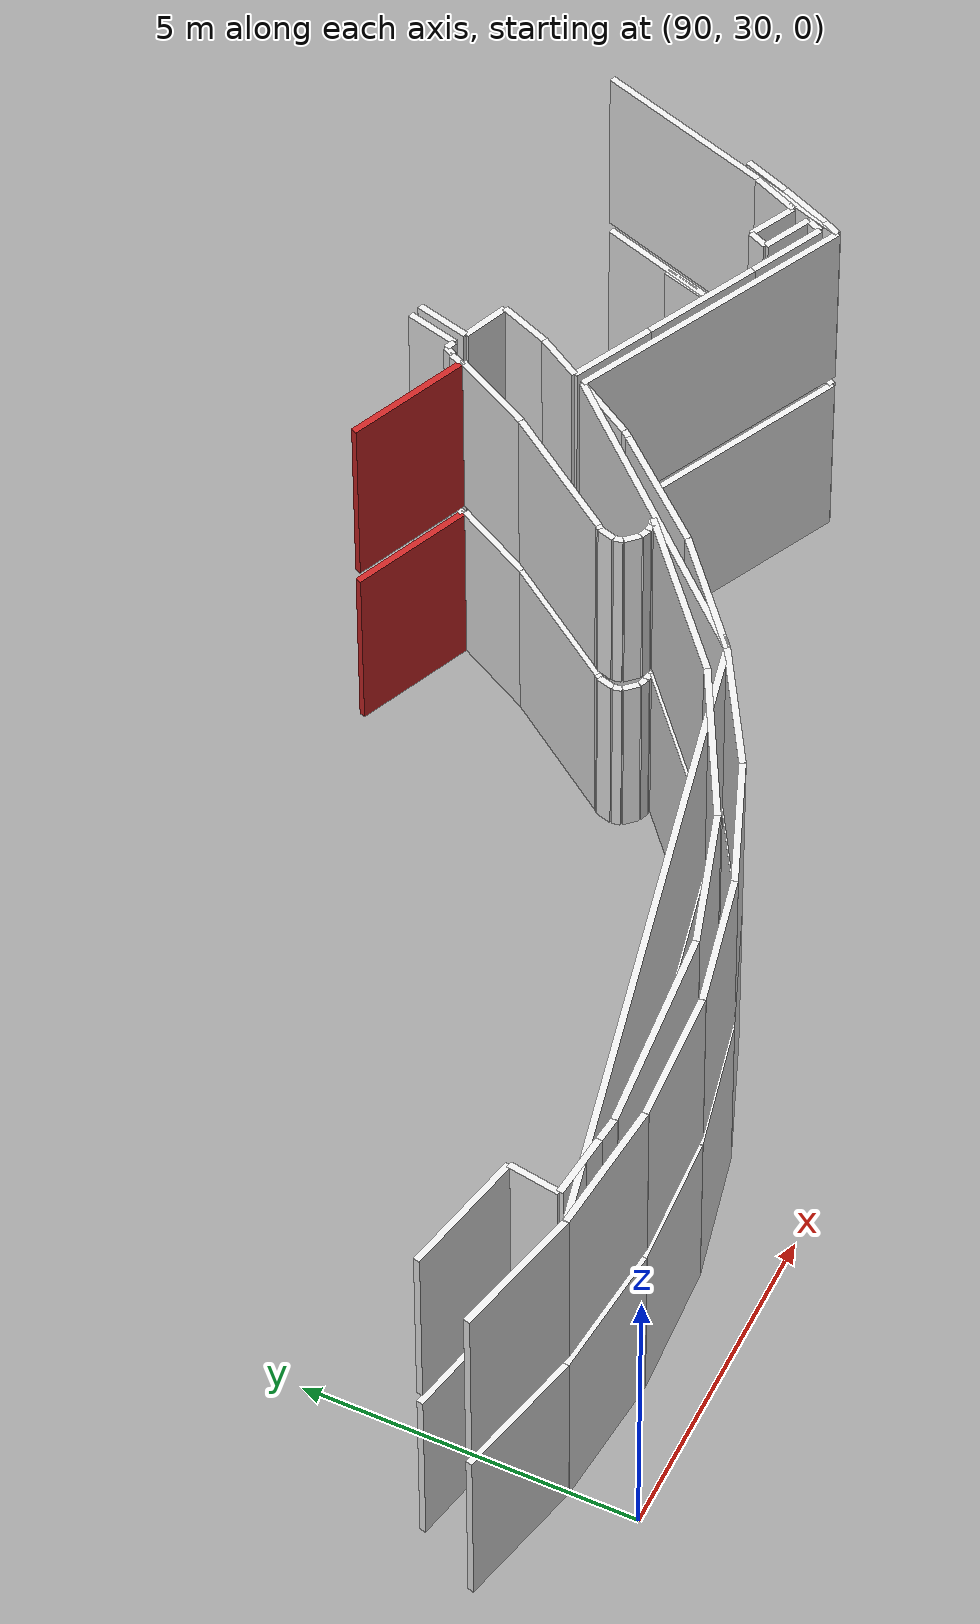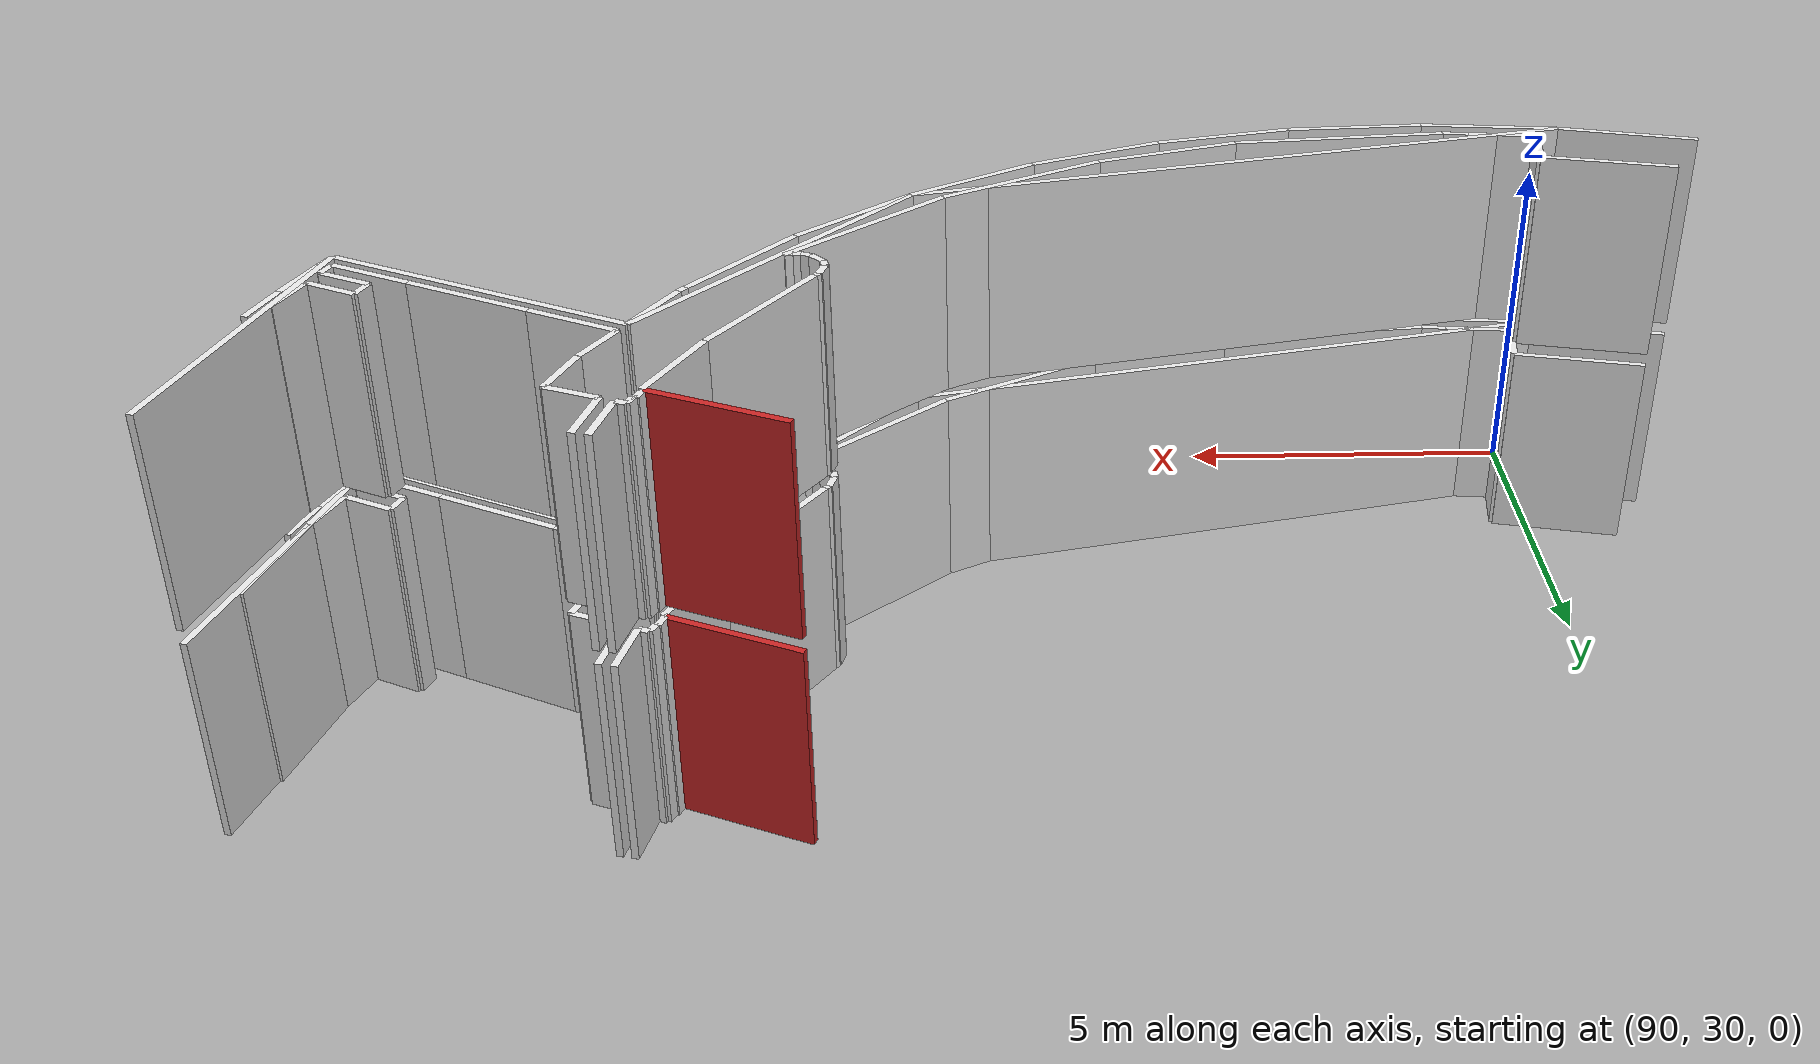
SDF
<sdf version="1.6">
 <world name="default">
  <model name="wall_101.7_39.1_0.0">
   <static>true</static>
   <pose>101.71000000002095 39.06499999994412 1.5 0 0 -0.4219085234522241</pose>
   <link name="link">
    <visual name="visual">
     <geometry><box><size>1.9291708063548034 0.1 3</size></box></geometry>
     <material>
      <script><uri>file://media/materials/scripts/gazebo.material</uri><name>Gazebo/Red</name></script>
     </material>
    </visual>
   </link>
  </model>
  <model name="wall_103.0_39.3_0.0">
   <static>true</static>
   <pose>103.0 39.31000000005588 1.5 0 0 -1.821799013301479</pose>
   <link name="link">
    <visual name="visual">
     <geometry><box><size>0.8052328858089288 0.1 3</size></box></geometry>
     <material>
      <script><uri>file://media/materials/scripts/gazebo.material</uri><name>Gazebo/White</name></script>
     </material>
    </visual>
   </link>
  </model>
  <model name="wall_102.8_38.9_0.0">
   <static>true</static>
   <pose>102.8300000000163 38.949999999953434 1.5 0 0 2.736700867003636</pose>
   <link name="link">
    <visual name="visual">
     <geometry><box><size>0.15231546215213043 0.1 3</size></box></geometry>
     <material>
      <script><uri>file://media/materials/scripts/gazebo.material</uri><name>Gazebo/White</name></script>
     </material>
    </visual>
   </link>
  </model>
  <model name="wall_102.7_38.9_0.0">
   <static>true</static>
   <pose>102.72500000000582 38.90999999991618 1.5 0 0 -2.0344439354630874</pose>
   <link name="link">
    <visual name="visual">
     <geometry><box><size>0.15652475854472905 0.1 3</size></box></geometry>
     <material>
      <script><uri>file://media/materials/scripts/gazebo.material</uri><name>Gazebo/White</name></script>
     </material>
    </visual>
   </link>
  </model>
  <model name="wall_102.7_38.8_0.0">
   <static>true</static>
   <pose>102.67999999999302 38.84499999997206 1.5 0 0 2.677945035275761</pose>
   <link name="link">
    <visual name="visual">
     <geometry><box><size>0.022360679899947934 0.1 3</size></box></geometry>
     <material>
      <script><uri>file://media/materials/scripts/gazebo.material</uri><name>Gazebo/White</name></script>
     </material>
    </visual>
   </link>
  </model>
  <model name="wall_102.6_38.8_0.0">
   <static>true</static>
   <pose>102.63000000000466 38.76000000000931 1.5 0 0 -1.9890206558340546</pose>
   <link name="link">
    <visual name="visual">
     <geometry><box><size>0.19697715617209063 0.1 3</size></box></geometry>
     <material>
      <script><uri>file://media/materials/scripts/gazebo.material</uri><name>Gazebo/White</name></script>
     </material>
    </visual>
   </link>
  </model>
  <model name="wall_102.6_38.7_0.0">
   <static>true</static>
   <pose>102.60500000001048 38.65999999991618 1.5 0 0 -0.5880026044430701</pose>
   <link name="link">
    <visual name="visual">
     <geometry><box><size>0.03605551273978751 0.1 3</size></box></geometry>
     <material>
      <script><uri>file://media/materials/scripts/gazebo.material</uri><name>Gazebo/White</name></script>
     </material>
    </visual>
   </link>
  </model>
  <model name="wall_102.3_38.1_0.0">
   <static>true</static>
   <pose>102.30499999999302 38.05499999993481 1.5 0 0 -2.0576955586286396</pose>
   <link name="link">
    <visual name="visual">
     <geometry><box><size>1.3464768842697874 0.1 3</size></box></geometry>
     <material>
      <script><uri>file://media/materials/scripts/gazebo.material</uri><name>Gazebo/White</name></script>
     </material>
    </visual>
   </link>
  </model>
  <model name="wall_101.4_36.6_0.0">
   <static>true</static>
   <pose>101.36499999999069 36.574999999953434 1.5 0 0 -2.1856810573733596</pose>
   <link name="link">
    <visual name="visual">
     <geometry><box><size>2.166887168282174 0.1 3</size></box></geometry>
     <material>
      <script><uri>file://media/materials/scripts/gazebo.material</uri><name>Gazebo/White</name></script>
     </material>
    </visual>
   </link>
  </model>
  <model name="wall_100.7_35.7_0.0">
   <static>true</static>
   <pose>100.71499999999651 35.66500000003725 1.5 0 0 -2.3561944919385747</pose>
   <link name="link">
    <visual name="visual">
     <geometry><box><size>0.07071067797871404 0.1 3</size></box></geometry>
     <material>
      <script><uri>file://media/materials/scripts/gazebo.material</uri><name>Gazebo/White</name></script>
     </material>
    </visual>
   </link>
  </model>
  <model name="wall_100.7_35.5_0.0">
   <static>true</static>
   <pose>100.65499999999884 35.52000000001863 1.5 0 0 -1.854590435779707</pose>
   <link name="link">
    <visual name="visual">
     <geometry><box><size>0.25000000021653246 0.1 3</size></box></geometry>
     <material>
      <script><uri>file://media/materials/scripts/gazebo.material</uri><name>Gazebo/White</name></script>
     </material>
    </visual>
   </link>
  </model>
  <model name="wall_100.6_35.3_0.0">
   <static>true</static>
   <pose>100.63500000000931 35.33499999996275 1.5 0 0 -1.3439974783485995</pose>
   <link name="link">
    <visual name="visual">
     <geometry><box><size>0.13341664053864913 0.1 3</size></box></geometry>
     <material>
      <script><uri>file://media/materials/scripts/gazebo.material</uri><name>Gazebo/White</name></script>
     </material>
    </visual>
   </link>
  </model>
  <model name="wall_100.7_35.2_0.0">
   <static>true</static>
   <pose>100.73500000001513 35.17999999993481 1.5 0 0 -0.8139618217489675</pose>
   <link name="link">
    <visual name="visual">
     <geometry><box><size>0.24758836817348331 0.1 3</size></box></geometry>
     <material>
      <script><uri>file://media/materials/scripts/gazebo.material</uri><name>Gazebo/White</name></script>
     </material>
    </visual>
   </link>
  </model>
  <model name="wall_100.9_35.1_0.0">
   <static>true</static>
   <pose>100.88500000000931 35.06499999994412 1.5 0 0 -0.36717383255805336</pose>
   <link name="link">
    <visual name="visual">
     <geometry><box><size>0.13928388270932235 0.1 3</size></box></geometry>
     <material>
      <script><uri>file://media/materials/scripts/gazebo.material</uri><name>Gazebo/White</name></script>
     </material>
    </visual>
   </link>
  </model>
  <model name="wall_101.0_35.0_0.0">
   <static>true</static>
   <pose>101.00500000000466 35.04000000003725 1.5 0 0 0.0</pose>
   <link name="link">
    <visual name="visual">
     <geometry><box><size>0.10999999998603016 0.1 3</size></box></geometry>
     <material>
      <script><uri>file://media/materials/scripts/gazebo.material</uri><name>Gazebo/White</name></script>
     </material>
    </visual>
   </link>
  </model>
  <model name="wall_101.1_35.1_0.0">
   <static>true</static>
   <pose>101.11499999999069 35.05499999993481 1.5 0 0 0.2662520474494707</pose>
   <link name="link">
    <visual name="visual">
     <geometry><box><size>0.11401754244252582 0.1 3</size></box></geometry>
     <material>
      <script><uri>file://media/materials/scripts/gazebo.material</uri><name>Gazebo/White</name></script>
     </material>
    </visual>
   </link>
  </model>
  <model name="wall_100.1_34.2_0.0">
   <static>true</static>
   <pose>100.125 34.17999999993481 1.5 0 0 -2.4361271769906225</pose>
   <link name="link">
    <visual name="visual">
     <geometry><box><size>2.7452686570050546 0.1 3</size></box></geometry>
     <material>
      <script><uri>file://media/materials/scripts/gazebo.material</uri><name>Gazebo/White</name></script>
     </material>
    </visual>
   </link>
  </model>
  <model name="wall_98.0_32.7_0.0">
   <static>true</static>
   <pose>97.96499999999651 32.699999999953434 1.5 0 0 -2.654899479832602</pose>
   <link name="link">
    <visual name="visual">
     <geometry><box><size>2.522954617224051 0.1 3</size></box></geometry>
     <material>
      <script><uri>file://media/materials/scripts/gazebo.material</uri><name>Gazebo/White</name></script>
     </material>
    </visual>
   </link>
  </model>
  <model name="wall_95.8_31.8_0.0">
   <static>true</static>
   <pose>95.83499999999185 31.794999999925494 1.5 0 0 -2.8406724192753643</pose>
   <link name="link">
    <visual name="visual">
     <geometry><box><size>2.125511703034424 0.1 3</size></box></geometry>
     <material>
      <script><uri>file://media/materials/scripts/gazebo.material</uri><name>Gazebo/White</name></script>
     </material>
    </visual>
   </link>
  </model>
  <model name="wall_93.3_31.3_0.0">
   <static>true</static>
   <pose>93.27499999999418 31.34499999997206 1.5 0 0 -3.0544353790302465</pose>
   <link name="link">
    <visual name="visual">
     <geometry><box><size>3.101773686162215 0.1 3</size></box></geometry>
     <material>
      <script><uri>file://media/materials/scripts/gazebo.material</uri><name>Gazebo/White</name></script>
     </material>
    </visual>
   </link>
  </model>
  <model name="wall_91.5_31.2_0.0">
   <static>true</static>
   <pose>91.5449999999837 31.229999999981374 1.5 0 0 3.0339027826561074</pose>
   <link name="link">
    <visual name="visual">
     <geometry><box><size>0.3721558813179423 0.1 3</size></box></geometry>
     <material>
      <script><uri>file://media/materials/scripts/gazebo.material</uri><name>Gazebo/White</name></script>
     </material>
    </visual>
   </link>
  </model>
  <model name="wall_90.9_31.3_0.0">
   <static>true</static>
   <pose>90.86999999999534 31.300000000046566 1.5 0 0 3.039903801730743</pose>
   <link name="link">
    <visual name="visual">
     <geometry><box><size>0.985088828472904 0.1 3</size></box></geometry>
     <material>
      <script><uri>file://media/materials/scripts/gazebo.material</uri><name>Gazebo/White</name></script>
     </material>
    </visual>
   </link>
  </model>
  <model name="wall_90.4_31.7_0.0">
   <static>true</static>
   <pose>90.44000000000233 31.739999999990687 1.5 0 0 1.4181469983659853</pose>
   <link name="link">
    <visual name="visual">
     <geometry><box><size>0.7891767860747378 0.1 3</size></box></geometry>
     <material>
      <script><uri>file://media/materials/scripts/gazebo.material</uri><name>Gazebo/White</name></script>
     </material>
    </visual>
   </link>
  </model>
  <model name="wall_89.6_32.3_0.0">
   <static>true</static>
   <pose>89.56500000000233 32.33499999996275 1.5 0 0 2.9257565612511374</pose>
   <link name="link">
    <visual name="visual">
     <geometry><box><size>1.914418971935029 0.1 3</size></box></geometry>
     <material>
      <script><uri>file://media/materials/scripts/gazebo.material</uri><name>Gazebo/White</name></script>
     </material>
    </visual>
   </link>
  </model>
  <model name="wall_107.7_37.2_0.0">
   <static>true</static>
   <pose>107.74499999999534 37.204999999841675 1.5 0 0 -1.8662371639558804</pose>
   <link name="link">
    <visual name="visual">
     <geometry><box><size>1.6829141390965354 0.1 3</size></box></geometry>
     <material>
      <script><uri>file://media/materials/scripts/gazebo.material</uri><name>Gazebo/White</name></script>
     </material>
    </visual>
   </link>
  </model>
  <model name="wall_107.4_36.1_0.0">
   <static>true</static>
   <pose>107.35000000000582 36.05499999993481 1.5 0 0 -1.980923667351811</pose>
   <link name="link">
    <visual name="visual">
     <geometry><box><size>0.7523961721831801 0.1 3</size></box></geometry>
     <material>
      <script><uri>file://media/materials/scripts/gazebo.material</uri><name>Gazebo/White</name></script>
     </material>
    </visual>
   </link>
  </model>
  <model name="wall_106.9_35.9_0.0">
   <static>true</static>
   <pose>106.86000000001513 35.87999999988824 1.5 0 0 2.677945044760186</pose>
   <link name="link">
    <visual name="visual">
     <geometry><box><size>0.760263112277041 0.1 3</size></box></geometry>
     <material>
      <script><uri>file://media/materials/scripts/gazebo.material</uri><name>Gazebo/White</name></script>
     </material>
    </visual>
   </link>
  </model>
  <model name="wall_106.5_35.9_0.0">
   <static>true</static>
   <pose>106.46000000002095 35.90999999991618 1.5 0 0 -1.9756881133308752</pose>
   <link name="link">
    <visual name="visual">
     <geometry><box><size>0.3046309240443975 0.1 3</size></box></geometry>
     <material>
      <script><uri>file://media/materials/scripts/gazebo.material</uri><name>Gazebo/White</name></script>
     </material>
    </visual>
   </link>
  </model>
  <model name="wall_106.7_35.6_0.0">
   <static>true</static>
   <pose>106.74500000002445 35.60000000009313 1.5 0 0 -0.4578337208438593</pose>
   <link name="link">
    <visual name="visual">
     <geometry><box><size>0.769220384481512 0.1 3</size></box></geometry>
     <material>
      <script><uri>file://media/materials/scripts/gazebo.material</uri><name>Gazebo/White</name></script>
     </material>
    </visual>
   </link>
  </model>
  <model name="wall_107.0_35.3_0.0">
   <static>true</static>
   <pose>107.04000000000815 35.31500000017695 1.5 0 0 -1.9809236674937056</pose>
   <link name="link">
    <visual name="visual">
     <geometry><box><size>0.25079872407653264 0.1 3</size></box></geometry>
     <material>
      <script><uri>file://media/materials/scripts/gazebo.material</uri><name>Gazebo/White</name></script>
     </material>
    </visual>
   </link>
  </model>
  <model name="wall_106.4_35.5_0.0">
   <static>true</static>
   <pose>106.44999999998254 35.47000000020489 1.5 0 0 2.6779450445674287</pose>
   <link name="link">
    <visual name="visual">
     <geometry><box><size>1.207476707881124 0.1 3</size></box></geometry>
     <material>
      <script><uri>file://media/materials/scripts/gazebo.material</uri><name>Gazebo/White</name></script>
     </material>
    </visual>
   </link>
  </model>
  <model name="wall_105.1_36.2_0.0">
   <static>true</static>
   <pose>105.08499999999185 36.15500000002794 1.5 0 0 2.675523741995435</pose>
   <link name="link">
    <visual name="visual">
     <geometry><box><size>1.8469975634080924 0.1 3</size></box></geometry>
     <material>
      <script><uri>file://media/materials/scripts/gazebo.material</uri><name>Gazebo/White</name></script>
     </material>
    </visual>
   </link>
  </model>
  <model name="wall_103.7_36.9_0.0">
   <static>true</static>
   <pose>103.6700000000128 36.86499999999069 1.5 0 0 2.6779450443719415</pose>
   <link name="link">
    <visual name="visual">
     <geometry><box><size>1.3192801068602384 0.1 3</size></box></geometry>
     <material>
      <script><uri>file://media/materials/scripts/gazebo.material</uri><name>Gazebo/White</name></script>
     </material>
    </visual>
   </link>
  </model>
  <model name="wall_103.3_37.5_0.0">
   <static>true</static>
   <pose>103.27499999999418 37.485000000102445 1.5 0 0 1.0303768265111433</pose>
   <link name="link">
    <visual name="visual">
     <geometry><box><size>0.7580237462272686 0.1 3</size></box></geometry>
     <material>
      <script><uri>file://media/materials/scripts/gazebo.material</uri><name>Gazebo/White</name></script>
     </material>
    </visual>
   </link>
  </model>
  <model name="wall_103.6_38.2_0.0">
   <static>true</static>
   <pose>103.61999999999534 38.18500000005588 1.5 0 0 1.1902899496290074</pose>
   <link name="link">
    <visual name="visual">
     <geometry><box><size>0.8077747210874698 0.1 3</size></box></geometry>
     <material>
      <script><uri>file://media/materials/scripts/gazebo.material</uri><name>Gazebo/White</name></script>
     </material>
    </visual>
   </link>
  </model>
  <model name="wall_103.4_38.7_0.0">
   <static>true</static>
   <pose>103.43000000002212 38.699999999953434 1.5 0 0 2.750985610146119</pose>
   <link name="link">
    <visual name="visual">
     <geometry><box><size>0.7353910523495384 0.1 3</size></box></geometry>
     <material>
      <script><uri>file://media/materials/scripts/gazebo.material</uri><name>Gazebo/White</name></script>
     </material>
    </visual>
   </link>
  </model>
  <model name="wall_103.2_39.2_0.0">
   <static>true</static>
   <pose>103.19500000000698 39.24499999987893 1.5 0 0 1.3171222307161075</pose>
   <link name="link">
    <visual name="visual">
     <geometry><box><size>0.8367795409036232 0.1 3</size></box></geometry>
     <material>
      <script><uri>file://media/materials/scripts/gazebo.material</uri><name>Gazebo/White</name></script>
     </material>
    </visual>
   </link>
  </model>
  <model name="wall_89.0_31.3_0.0">
   <static>true</static>
   <pose>89.02499999999418 31.31499999994412 1.5 0 0 -0.23651453623268864</pose>
   <link name="link">
    <visual name="visual">
     <geometry><box><size>2.0058414692592925 0.1 3</size></box></geometry>
     <material>
      <script><uri>file://media/materials/scripts/gazebo.material</uri><name>Gazebo/White</name></script>
     </material>
    </visual>
   </link>
  </model>
  <model name="wall_91.0_31.0_0.0">
   <static>true</static>
   <pose>90.99499999999534 30.985000000102445 1.5 0 0 -0.09518884171524361</pose>
   <link name="link">
    <visual name="visual">
     <geometry><box><size>1.9990497742531823 0.1 3</size></box></geometry>
     <material>
      <script><uri>file://media/materials/scripts/gazebo.material</uri><name>Gazebo/White</name></script>
     </material>
    </visual>
   </link>
  </model>
  <model name="wall_93.0_30.9_0.0">
   <static>true</static>
   <pose>92.98499999998603 30.945000000065193 1.5 0 0 0.05522018623431974</pose>
   <link name="link">
    <visual name="visual">
     <geometry><box><size>1.9930378822125405 0.1 3</size></box></geometry>
     <material>
      <script><uri>file://media/materials/scripts/gazebo.material</uri><name>Gazebo/White</name></script>
     </material>
    </visual>
   </link>
  </model>
  <model name="wall_95.0_31.2_0.0">
   <static>true</static>
   <pose>94.95999999999185 31.21999999997206 1.5 0 0 0.2208287696999214</pose>
   <link name="link">
    <visual name="visual">
     <geometry><box><size>2.008780724726561 0.1 3</size></box></geometry>
     <material>
      <script><uri>file://media/materials/scripts/gazebo.material</uri><name>Gazebo/White</name></script>
     </material>
    </visual>
   </link>
  </model>
  <model name="wall_96.9_31.8_0.0">
   <static>true</static>
   <pose>96.86999999999534 31.81000000005588 1.5 0 0 0.378651091777806</pose>
   <link name="link">
    <visual name="visual">
     <geometry><box><size>2.001799190797828 0.1 3</size></box></geometry>
     <material>
      <script><uri>file://media/materials/scripts/gazebo.material</uri><name>Gazebo/White</name></script>
     </material>
    </visual>
   </link>
  </model>
  <model name="wall_98.7_32.7_0.0">
   <static>true</static>
   <pose>98.66000000000349 32.69000000017695 1.5 0 0 0.5352737480904504</pose>
   <link name="link">
    <visual name="visual">
     <geometry><box><size>1.9996999775321596 0.1 3</size></box></geometry>
     <material>
      <script><uri>file://media/materials/scripts/gazebo.material</uri><name>Gazebo/White</name></script>
     </material>
    </visual>
   </link>
  </model>
  <model name="wall_100.3_33.8_0.0">
   <static>true</static>
   <pose>100.28500000000349 33.84500000020489 1.5 0 0 0.7004963699717071</pose>
   <link name="link">
    <visual name="visual">
     <geometry><box><size>2.0012496096198227 0.1 3</size></box></geometry>
     <material>
      <script><uri>file://media/materials/scripts/gazebo.material</uri><name>Gazebo/White</name></script>
     </material>
    </visual>
   </link>
  </model>
  <model name="wall_101.7_35.2_0.0">
   <static>true</static>
   <pose>101.7049999999872 35.24500000011176 1.5 0 0 0.8562015958949653</pose>
   <link name="link">
    <visual name="visual">
     <geometry><box><size>1.999049774097403 0.1 3</size></box></geometry>
     <material>
      <script><uri>file://media/materials/scripts/gazebo.material</uri><name>Gazebo/White</name></script>
     </material>
    </visual>
   </link>
  </model>
  <model name="wall_102.4_36.1_0.0">
   <static>true</static>
   <pose>102.39999999999418 36.050000000046566 1.5 0 0 0.8960553849262687</pose>
   <link name="link">
    <visual name="visual">
     <geometry><box><size>0.1280624848315624 0.1 3</size></box></geometry>
     <material>
      <script><uri>file://media/materials/scripts/gazebo.material</uri><name>Gazebo/White</name></script>
     </material>
    </visual>
   </link>
  </model>
  <model name="wall_102.7_36.5_0.0">
   <static>true</static>
   <pose>102.70999999999185 36.545000000158325 1.5 0 0 1.0254345274736425</pose>
   <link name="link">
    <visual name="visual">
     <geometry><box><size>1.0410091259011396 0.1 3</size></box></geometry>
     <material>
      <script><uri>file://media/materials/scripts/gazebo.material</uri><name>Gazebo/White</name></script>
     </material>
    </visual>
   </link>
  </model>
  <model name="wall_105.0_36.0_0.0">
   <static>true</static>
   <pose>105.00999999998021 35.97000000020489 1.5 0 0 -0.46561611040271994</pose>
   <link name="link">
    <visual name="visual">
     <geometry><box><size>4.543698933702924 0.1 3</size></box></geometry>
     <material>
      <script><uri>file://media/materials/scripts/gazebo.material</uri><name>Gazebo/White</name></script>
     </material>
    </visual>
   </link>
  </model>
  <model name="wall_107.1_35.1_0.0">
   <static>true</static>
   <pose>107.09999999997672 35.075000000186265 1.5 0 0 1.1232763516528652</pose>
   <link name="link">
    <visual name="visual">
     <geometry><box><size>0.2773084924752259 0.1 3</size></box></geometry>
     <material>
      <script><uri>file://media/materials/scripts/gazebo.material</uri><name>Gazebo/White</name></script>
     </material>
    </visual>
   </link>
  </model>
  <model name="wall_107.3_35.6_0.0">
   <static>true</static>
   <pose>107.31999999997788 35.580000000074506 1.5 0 0 1.1722738810154851</pose>
   <link name="link">
    <visual name="visual">
     <geometry><box><size>0.8246211249202411 0.1 3</size></box></geometry>
     <material>
      <script><uri>file://media/materials/scripts/gazebo.material</uri><name>Gazebo/White</name></script>
     </material>
    </visual>
   </link>
  </model>
  <model name="wall_107.6_36.3_0.0">
   <static>true</static>
   <pose>107.60999999998603 36.30499999993481 1.5 0 0 1.2104383562315624</pose>
   <link name="link">
    <visual name="visual">
     <geometry><box><size>0.7373601561840247 0.1 3</size></box></geometry>
     <material>
      <script><uri>file://media/materials/scripts/gazebo.material</uri><name>Gazebo/White</name></script>
     </material>
    </visual>
   </link>
  </model>
  <model name="wall_107.7_37.0_0.0">
   <static>true</static>
   <pose>107.70999999999185 37.015000000130385 1.5 0 0 -1.8845353992981464</pose>
   <link name="link">
    <visual name="visual">
     <geometry><box><size>4.341946567974497 0.1 3</size></box></geometry>
     <material>
      <script><uri>file://media/materials/scripts/gazebo.material</uri><name>Gazebo/White</name></script>
     </material>
    </visual>
   </link>
  </model>
  <model name="wall_101.2_35.1_0.0">
   <static>true</static>
   <pose>101.25 35.09500000020489 1.5 0 0 -2.3107086442837126</pose>
   <link name="link">
    <visual name="visual">
     <geometry><box><size>5.131832031548245 0.1 3</size></box></geometry>
     <material>
      <script><uri>file://media/materials/scripts/gazebo.material</uri><name>Gazebo/White</name></script>
     </material>
    </visual>
   </link>
  </model>
  <model name="wall_94.8_32.1_0.0">
   <static>true</static>
   <pose>94.76000000000931 32.140000000130385 1.5 0 0 -2.9224788678767726</pose>
   <link name="link">
    <visual name="visual">
     <geometry><box><size>9.753194348562348 0.1 3</size></box></geometry>
     <material>
      <script><uri>file://media/materials/scripts/gazebo.material</uri><name>Gazebo/White</name></script>
     </material>
    </visual>
   </link>
  </model>
  <model name="wall_101.7_39.1_3.2">
   <static>true</static>
   <pose>101.71000000002095 39.06499999994412 4.7 0 0 -0.4219085234522241</pose>
   <link name="link">
    <visual name="visual">
     <geometry><box><size>1.9291708063548034 0.1 3</size></box></geometry>
     <material>
      <script><uri>file://media/materials/scripts/gazebo.material</uri><name>Gazebo/Red</name></script>
     </material>
    </visual>
   </link>
  </model>
  <model name="wall_103.0_39.3_3.2">
   <static>true</static>
   <pose>103.0 39.31000000005588 4.7 0 0 -1.821799013301479</pose>
   <link name="link">
    <visual name="visual">
     <geometry><box><size>0.8052328858089288 0.1 3</size></box></geometry>
     <material>
      <script><uri>file://media/materials/scripts/gazebo.material</uri><name>Gazebo/White</name></script>
     </material>
    </visual>
   </link>
  </model>
  <model name="wall_102.8_38.9_3.2">
   <static>true</static>
   <pose>102.8300000000163 38.949999999953434 4.7 0 0 2.736700867003636</pose>
   <link name="link">
    <visual name="visual">
     <geometry><box><size>0.15231546215213043 0.1 3</size></box></geometry>
     <material>
      <script><uri>file://media/materials/scripts/gazebo.material</uri><name>Gazebo/White</name></script>
     </material>
    </visual>
   </link>
  </model>
  <model name="wall_102.7_38.9_3.2">
   <static>true</static>
   <pose>102.72500000000582 38.90999999991618 4.7 0 0 -2.0344439354630874</pose>
   <link name="link">
    <visual name="visual">
     <geometry><box><size>0.15652475854472905 0.1 3</size></box></geometry>
     <material>
      <script><uri>file://media/materials/scripts/gazebo.material</uri><name>Gazebo/White</name></script>
     </material>
    </visual>
   </link>
  </model>
  <model name="wall_102.7_38.8_3.2">
   <static>true</static>
   <pose>102.67999999999302 38.84499999997206 4.7 0 0 2.677945035275761</pose>
   <link name="link">
    <visual name="visual">
     <geometry><box><size>0.022360679899947934 0.1 3</size></box></geometry>
     <material>
      <script><uri>file://media/materials/scripts/gazebo.material</uri><name>Gazebo/White</name></script>
     </material>
    </visual>
   </link>
  </model>
  <model name="wall_102.6_38.8_3.2">
   <static>true</static>
   <pose>102.63000000000466 38.76000000000931 4.7 0 0 -1.9890206558340546</pose>
   <link name="link">
    <visual name="visual">
     <geometry><box><size>0.19697715617209063 0.1 3</size></box></geometry>
     <material>
      <script><uri>file://media/materials/scripts/gazebo.material</uri><name>Gazebo/White</name></script>
     </material>
    </visual>
   </link>
  </model>
  <model name="wall_102.6_38.7_3.2">
   <static>true</static>
   <pose>102.60500000001048 38.65999999991618 4.7 0 0 -0.5880026044430701</pose>
   <link name="link">
    <visual name="visual">
     <geometry><box><size>0.03605551273978751 0.1 3</size></box></geometry>
     <material>
      <script><uri>file://media/materials/scripts/gazebo.material</uri><name>Gazebo/White</name></script>
     </material>
    </visual>
   </link>
  </model>
  <model name="wall_102.3_38.1_3.2">
   <static>true</static>
   <pose>102.30499999999302 38.05499999993481 4.7 0 0 -2.0576955586286396</pose>
   <link name="link">
    <visual name="visual">
     <geometry><box><size>1.3464768842697874 0.1 3</size></box></geometry>
     <material>
      <script><uri>file://media/materials/scripts/gazebo.material</uri><name>Gazebo/White</name></script>
     </material>
    </visual>
   </link>
  </model>
  <model name="wall_101.4_36.6_3.2">
   <static>true</static>
   <pose>101.36499999999069 36.574999999953434 4.7 0 0 -2.1856810573733596</pose>
   <link name="link">
    <visual name="visual">
     <geometry><box><size>2.166887168282174 0.1 3</size></box></geometry>
     <material>
      <script><uri>file://media/materials/scripts/gazebo.material</uri><name>Gazebo/White</name></script>
     </material>
    </visual>
   </link>
  </model>
  <model name="wall_100.7_35.7_3.2">
   <static>true</static>
   <pose>100.71499999999651 35.66500000003725 4.7 0 0 -2.3561944919385747</pose>
   <link name="link">
    <visual name="visual">
     <geometry><box><size>0.07071067797871404 0.1 3</size></box></geometry>
     <material>
      <script><uri>file://media/materials/scripts/gazebo.material</uri><name>Gazebo/White</name></script>
     </material>
    </visual>
   </link>
  </model>
  <model name="wall_100.7_35.5_3.2">
   <static>true</static>
   <pose>100.65499999999884 35.52000000001863 4.7 0 0 -1.854590435779707</pose>
   <link name="link">
    <visual name="visual">
     <geometry><box><size>0.25000000021653246 0.1 3</size></box></geometry>
     <material>
      <script><uri>file://media/materials/scripts/gazebo.material</uri><name>Gazebo/White</name></script>
     </material>
    </visual>
   </link>
  </model>
  <model name="wall_100.6_35.3_3.2">
   <static>true</static>
   <pose>100.63500000000931 35.33499999996275 4.7 0 0 -1.3439974783485995</pose>
   <link name="link">
    <visual name="visual">
     <geometry><box><size>0.13341664053864913 0.1 3</size></box></geometry>
     <material>
      <script><uri>file://media/materials/scripts/gazebo.material</uri><name>Gazebo/White</name></script>
     </material>
    </visual>
   </link>
  </model>
  <model name="wall_100.7_35.2_3.2">
   <static>true</static>
   <pose>100.73500000001513 35.17999999993481 4.7 0 0 -0.8139618217489675</pose>
   <link name="link">
    <visual name="visual">
     <geometry><box><size>0.24758836817348331 0.1 3</size></box></geometry>
     <material>
      <script><uri>file://media/materials/scripts/gazebo.material</uri><name>Gazebo/White</name></script>
     </material>
    </visual>
   </link>
  </model>
  <model name="wall_100.9_35.1_3.2">
   <static>true</static>
   <pose>100.88500000000931 35.06499999994412 4.7 0 0 -0.36717383255805336</pose>
   <link name="link">
    <visual name="visual">
     <geometry><box><size>0.13928388270932235 0.1 3</size></box></geometry>
     <material>
      <script><uri>file://media/materials/scripts/gazebo.material</uri><name>Gazebo/White</name></script>
     </material>
    </visual>
   </link>
  </model>
  <model name="wall_101.0_35.0_3.2">
   <static>true</static>
   <pose>101.00500000000466 35.04000000003725 4.7 0 0 0.0</pose>
   <link name="link">
    <visual name="visual">
     <geometry><box><size>0.10999999998603016 0.1 3</size></box></geometry>
     <material>
      <script><uri>file://media/materials/scripts/gazebo.material</uri><name>Gazebo/White</name></script>
     </material>
    </visual>
   </link>
  </model>
  <model name="wall_101.1_35.1_3.2">
   <static>true</static>
   <pose>101.11499999999069 35.05499999993481 4.7 0 0 0.2662520474494707</pose>
   <link name="link">
    <visual name="visual">
     <geometry><box><size>0.11401754244252582 0.1 3</size></box></geometry>
     <material>
      <script><uri>file://media/materials/scripts/gazebo.material</uri><name>Gazebo/White</name></script>
     </material>
    </visual>
   </link>
  </model>
  <model name="wall_100.1_34.2_3.2">
   <static>true</static>
   <pose>100.125 34.17999999993481 4.7 0 0 -2.4361271769906225</pose>
   <link name="link">
    <visual name="visual">
     <geometry><box><size>2.7452686570050546 0.1 3</size></box></geometry>
     <material>
      <script><uri>file://media/materials/scripts/gazebo.material</uri><name>Gazebo/White</name></script>
     </material>
    </visual>
   </link>
  </model>
  <model name="wall_98.0_32.7_3.2">
   <static>true</static>
   <pose>97.96499999999651 32.699999999953434 4.7 0 0 -2.654899479832602</pose>
   <link name="link">
    <visual name="visual">
     <geometry><box><size>2.522954617224051 0.1 3</size></box></geometry>
     <material>
      <script><uri>file://media/materials/scripts/gazebo.material</uri><name>Gazebo/White</name></script>
     </material>
    </visual>
   </link>
  </model>
  <model name="wall_95.8_31.8_3.2">
   <static>true</static>
   <pose>95.83499999999185 31.794999999925494 4.7 0 0 -2.8406724192753643</pose>
   <link name="link">
    <visual name="visual">
     <geometry><box><size>2.125511703034424 0.1 3</size></box></geometry>
     <material>
      <script><uri>file://media/materials/scripts/gazebo.material</uri><name>Gazebo/White</name></script>
     </material>
    </visual>
   </link>
  </model>
  <model name="wall_93.3_31.3_3.2">
   <static>true</static>
   <pose>93.27499999999418 31.34499999997206 4.7 0 0 -3.0544353790302465</pose>
   <link name="link">
    <visual name="visual">
     <geometry><box><size>3.101773686162215 0.1 3</size></box></geometry>
     <material>
      <script><uri>file://media/materials/scripts/gazebo.material</uri><name>Gazebo/White</name></script>
     </material>
    </visual>
   </link>
  </model>
  <model name="wall_91.5_31.2_3.2">
   <static>true</static>
   <pose>91.5449999999837 31.229999999981374 4.7 0 0 3.0339027826561074</pose>
   <link name="link">
    <visual name="visual">
     <geometry><box><size>0.3721558813179423 0.1 3</size></box></geometry>
     <material>
      <script><uri>file://media/materials/scripts/gazebo.material</uri><name>Gazebo/White</name></script>
     </material>
    </visual>
   </link>
  </model>
  <model name="wall_90.9_31.3_3.2">
   <static>true</static>
   <pose>90.86999999999534 31.300000000046566 4.7 0 0 3.039903801730743</pose>
   <link name="link">
    <visual name="visual">
     <geometry><box><size>0.985088828472904 0.1 3</size></box></geometry>
     <material>
      <script><uri>file://media/materials/scripts/gazebo.material</uri><name>Gazebo/White</name></script>
     </material>
    </visual>
   </link>
  </model>
  <model name="wall_90.4_31.7_3.2">
   <static>true</static>
   <pose>90.44000000000233 31.739999999990687 4.7 0 0 1.4181469983659853</pose>
   <link name="link">
    <visual name="visual">
     <geometry><box><size>0.7891767860747378 0.1 3</size></box></geometry>
     <material>
      <script><uri>file://media/materials/scripts/gazebo.material</uri><name>Gazebo/White</name></script>
     </material>
    </visual>
   </link>
  </model>
  <model name="wall_89.6_32.3_3.2">
   <static>true</static>
   <pose>89.56500000000233 32.33499999996275 4.7 0 0 2.9257565612511374</pose>
   <link name="link">
    <visual name="visual">
     <geometry><box><size>1.914418971935029 0.1 3</size></box></geometry>
     <material>
      <script><uri>file://media/materials/scripts/gazebo.material</uri><name>Gazebo/White</name></script>
     </material>
    </visual>
   </link>
  </model>
  <model name="wall_107.4_36.1_3.2">
   <static>true</static>
   <pose>107.35000000000582 36.05499999993481 4.7 0 0 -1.980923667351811</pose>
   <link name="link">
    <visual name="visual">
     <geometry><box><size>0.7523961721831801 0.1 3</size></box></geometry>
     <material>
      <script><uri>file://media/materials/scripts/gazebo.material</uri><name>Gazebo/White</name></script>
     </material>
    </visual>
   </link>
  </model>
  <model name="wall_106.9_35.9_3.2">
   <static>true</static>
   <pose>106.86000000001513 35.87999999988824 4.7 0 0 2.677945044760186</pose>
   <link name="link">
    <visual name="visual">
     <geometry><box><size>0.760263112277041 0.1 3</size></box></geometry>
     <material>
      <script><uri>file://media/materials/scripts/gazebo.material</uri><name>Gazebo/White</name></script>
     </material>
    </visual>
   </link>
  </model>
  <model name="wall_106.5_35.9_3.2">
   <static>true</static>
   <pose>106.46000000002095 35.90999999991618 4.7 0 0 -1.9756881133308752</pose>
   <link name="link">
    <visual name="visual">
     <geometry><box><size>0.3046309240443975 0.1 3</size></box></geometry>
     <material>
      <script><uri>file://media/materials/scripts/gazebo.material</uri><name>Gazebo/White</name></script>
     </material>
    </visual>
   </link>
  </model>
  <model name="wall_106.7_35.6_3.2">
   <static>true</static>
   <pose>106.74500000002445 35.60000000009313 4.7 0 0 -0.4578337208438593</pose>
   <link name="link">
    <visual name="visual">
     <geometry><box><size>0.769220384481512 0.1 3</size></box></geometry>
     <material>
      <script><uri>file://media/materials/scripts/gazebo.material</uri><name>Gazebo/White</name></script>
     </material>
    </visual>
   </link>
  </model>
  <model name="wall_107.0_35.3_3.2">
   <static>true</static>
   <pose>107.04000000000815 35.31500000017695 4.7 0 0 -1.9809236674937056</pose>
   <link name="link">
    <visual name="visual">
     <geometry><box><size>0.25079872407653264 0.1 3</size></box></geometry>
     <material>
      <script><uri>file://media/materials/scripts/gazebo.material</uri><name>Gazebo/White</name></script>
     </material>
    </visual>
   </link>
  </model>
  <model name="wall_106.4_35.5_3.2">
   <static>true</static>
   <pose>106.44999999998254 35.47000000020489 4.7 0 0 2.6779450445674287</pose>
   <link name="link">
    <visual name="visual">
     <geometry><box><size>1.207476707881124 0.1 3</size></box></geometry>
     <material>
      <script><uri>file://media/materials/scripts/gazebo.material</uri><name>Gazebo/White</name></script>
     </material>
    </visual>
   </link>
  </model>
  <model name="wall_105.1_36.2_3.2">
   <static>true</static>
   <pose>105.08499999999185 36.15500000002794 4.7 0 0 2.675523741995435</pose>
   <link name="link">
    <visual name="visual">
     <geometry><box><size>1.8469975634080924 0.1 3</size></box></geometry>
     <material>
      <script><uri>file://media/materials/scripts/gazebo.material</uri><name>Gazebo/White</name></script>
     </material>
    </visual>
   </link>
  </model>
  <model name="wall_103.7_36.9_3.2">
   <static>true</static>
   <pose>103.6700000000128 36.86499999999069 4.7 0 0 2.6779450443719415</pose>
   <link name="link">
    <visual name="visual">
     <geometry><box><size>1.3192801068602384 0.1 3</size></box></geometry>
     <material>
      <script><uri>file://media/materials/scripts/gazebo.material</uri><name>Gazebo/White</name></script>
     </material>
    </visual>
   </link>
  </model>
  <model name="wall_103.3_37.5_3.2">
   <static>true</static>
   <pose>103.27499999999418 37.485000000102445 4.7 0 0 1.0303768265111433</pose>
   <link name="link">
    <visual name="visual">
     <geometry><box><size>0.7580237462272686 0.1 3</size></box></geometry>
     <material>
      <script><uri>file://media/materials/scripts/gazebo.material</uri><name>Gazebo/White</name></script>
     </material>
    </visual>
   </link>
  </model>
  <model name="wall_103.6_38.2_3.2">
   <static>true</static>
   <pose>103.61999999999534 38.18500000005588 4.7 0 0 1.1902899496290074</pose>
   <link name="link">
    <visual name="visual">
     <geometry><box><size>0.8077747210874698 0.1 3</size></box></geometry>
     <material>
      <script><uri>file://media/materials/scripts/gazebo.material</uri><name>Gazebo/White</name></script>
     </material>
    </visual>
   </link>
  </model>
  <model name="wall_103.4_38.7_3.2">
   <static>true</static>
   <pose>103.43000000002212 38.699999999953434 4.7 0 0 2.750985610146119</pose>
   <link name="link">
    <visual name="visual">
     <geometry><box><size>0.7353910523495384 0.1 3</size></box></geometry>
     <material>
      <script><uri>file://media/materials/scripts/gazebo.material</uri><name>Gazebo/White</name></script>
     </material>
    </visual>
   </link>
  </model>
  <model name="wall_103.2_39.2_3.2">
   <static>true</static>
   <pose>103.19500000000698 39.24499999987893 4.7 0 0 1.3171222307161075</pose>
   <link name="link">
    <visual name="visual">
     <geometry><box><size>0.8367795409036232 0.1 3</size></box></geometry>
     <material>
      <script><uri>file://media/materials/scripts/gazebo.material</uri><name>Gazebo/White</name></script>
     </material>
    </visual>
   </link>
  </model>
  <model name="wall_89.0_31.3_3.2">
   <static>true</static>
   <pose>89.02499999999418 31.31499999994412 4.7 0 0 -0.23651453623268864</pose>
   <link name="link">
    <visual name="visual">
     <geometry><box><size>2.0058414692592925 0.1 3</size></box></geometry>
     <material>
      <script><uri>file://media/materials/scripts/gazebo.material</uri><name>Gazebo/White</name></script>
     </material>
    </visual>
   </link>
  </model>
  <model name="wall_91.0_31.0_3.2">
   <static>true</static>
   <pose>90.99499999999534 30.985000000102445 4.7 0 0 -0.09518884171524361</pose>
   <link name="link">
    <visual name="visual">
     <geometry><box><size>1.9990497742531823 0.1 3</size></box></geometry>
     <material>
      <script><uri>file://media/materials/scripts/gazebo.material</uri><name>Gazebo/White</name></script>
     </material>
    </visual>
   </link>
  </model>
  <model name="wall_93.0_30.9_3.2">
   <static>true</static>
   <pose>92.98499999998603 30.945000000065193 4.7 0 0 0.05522018623431974</pose>
   <link name="link">
    <visual name="visual">
     <geometry><box><size>1.9930378822125405 0.1 3</size></box></geometry>
     <material>
      <script><uri>file://media/materials/scripts/gazebo.material</uri><name>Gazebo/White</name></script>
     </material>
    </visual>
   </link>
  </model>
  <model name="wall_95.0_31.2_3.2">
   <static>true</static>
   <pose>94.95999999999185 31.21999999997206 4.7 0 0 0.2208287696999214</pose>
   <link name="link">
    <visual name="visual">
     <geometry><box><size>2.008780724726561 0.1 3</size></box></geometry>
     <material>
      <script><uri>file://media/materials/scripts/gazebo.material</uri><name>Gazebo/White</name></script>
     </material>
    </visual>
   </link>
  </model>
  <model name="wall_96.9_31.8_3.2">
   <static>true</static>
   <pose>96.86999999999534 31.81000000005588 4.7 0 0 0.378651091777806</pose>
   <link name="link">
    <visual name="visual">
     <geometry><box><size>2.001799190797828 0.1 3</size></box></geometry>
     <material>
      <script><uri>file://media/materials/scripts/gazebo.material</uri><name>Gazebo/White</name></script>
     </material>
    </visual>
   </link>
  </model>
  <model name="wall_98.7_32.7_3.2">
   <static>true</static>
   <pose>98.66000000000349 32.69000000017695 4.7 0 0 0.5352737480904504</pose>
   <link name="link">
    <visual name="visual">
     <geometry><box><size>1.9996999775321596 0.1 3</size></box></geometry>
     <material>
      <script><uri>file://media/materials/scripts/gazebo.material</uri><name>Gazebo/White</name></script>
     </material>
    </visual>
   </link>
  </model>
  <model name="wall_100.3_33.8_3.2">
   <static>true</static>
   <pose>100.28500000000349 33.84500000020489 4.7 0 0 0.7004963699717071</pose>
   <link name="link">
    <visual name="visual">
     <geometry><box><size>2.0012496096198227 0.1 3</size></box></geometry>
     <material>
      <script><uri>file://media/materials/scripts/gazebo.material</uri><name>Gazebo/White</name></script>
     </material>
    </visual>
   </link>
  </model>
  <model name="wall_101.7_35.2_3.2">
   <static>true</static>
   <pose>101.7049999999872 35.24500000011176 4.7 0 0 0.8562015958949653</pose>
   <link name="link">
    <visual name="visual">
     <geometry><box><size>1.999049774097403 0.1 3</size></box></geometry>
     <material>
      <script><uri>file://media/materials/scripts/gazebo.material</uri><name>Gazebo/White</name></script>
     </material>
    </visual>
   </link>
  </model>
  <model name="wall_102.4_36.1_3.2">
   <static>true</static>
   <pose>102.39999999999418 36.050000000046566 4.7 0 0 0.8960553849262687</pose>
   <link name="link">
    <visual name="visual">
     <geometry><box><size>0.1280624848315624 0.1 3</size></box></geometry>
     <material>
      <script><uri>file://media/materials/scripts/gazebo.material</uri><name>Gazebo/White</name></script>
     </material>
    </visual>
   </link>
  </model>
  <model name="wall_102.7_36.5_3.2">
   <static>true</static>
   <pose>102.70999999999185 36.545000000158325 4.7 0 0 1.0254345274736425</pose>
   <link name="link">
    <visual name="visual">
     <geometry><box><size>1.0410091259011396 0.1 3</size></box></geometry>
     <material>
      <script><uri>file://media/materials/scripts/gazebo.material</uri><name>Gazebo/White</name></script>
     </material>
    </visual>
   </link>
  </model>
  <model name="wall_105.0_36.0_3.2">
   <static>true</static>
   <pose>105.00999999998021 35.97000000020489 4.7 0 0 -0.46561611040271994</pose>
   <link name="link">
    <visual name="visual">
     <geometry><box><size>4.543698933702924 0.1 3</size></box></geometry>
     <material>
      <script><uri>file://media/materials/scripts/gazebo.material</uri><name>Gazebo/White</name></script>
     </material>
    </visual>
   </link>
  </model>
  <model name="wall_107.1_35.1_3.2">
   <static>true</static>
   <pose>107.09999999997672 35.075000000186265 4.7 0 0 1.1232763516528652</pose>
   <link name="link">
    <visual name="visual">
     <geometry><box><size>0.2773084924752259 0.1 3</size></box></geometry>
     <material>
      <script><uri>file://media/materials/scripts/gazebo.material</uri><name>Gazebo/White</name></script>
     </material>
    </visual>
   </link>
  </model>
  <model name="wall_107.3_35.6_3.2">
   <static>true</static>
   <pose>107.31999999997788 35.580000000074506 4.7 0 0 1.1722738810154851</pose>
   <link name="link">
    <visual name="visual">
     <geometry><box><size>0.8246211249202411 0.1 3</size></box></geometry>
     <material>
      <script><uri>file://media/materials/scripts/gazebo.material</uri><name>Gazebo/White</name></script>
     </material>
    </visual>
   </link>
  </model>
  <model name="wall_107.6_36.3_3.2">
   <static>true</static>
   <pose>107.60999999998603 36.30499999993481 4.7 0 0 1.2104383562315624</pose>
   <link name="link">
    <visual name="visual">
     <geometry><box><size>0.7373601561840247 0.1 3</size></box></geometry>
     <material>
      <script><uri>file://media/materials/scripts/gazebo.material</uri><name>Gazebo/White</name></script>
     </material>
    </visual>
   </link>
  </model>
  <model name="wall_107.7_37.0_3.2">
   <static>true</static>
   <pose>107.70999999999185 37.015000000130385 4.7 0 0 -1.8845353992981464</pose>
   <link name="link">
    <visual name="visual">
     <geometry><box><size>4.341946567974497 0.1 3</size></box></geometry>
     <material>
      <script><uri>file://media/materials/scripts/gazebo.material</uri><name>Gazebo/White</name></script>
     </material>
    </visual>
   </link>
  </model>
  <model name="wall_101.2_35.1_3.2">
   <static>true</static>
   <pose>101.25 35.09500000020489 4.7 0 0 -2.3107086442837126</pose>
   <link name="link">
    <visual name="visual">
     <geometry><box><size>5.131832031548245 0.1 3</size></box></geometry>
     <material>
      <script><uri>file://media/materials/scripts/gazebo.material</uri><name>Gazebo/White</name></script>
     </material>
    </visual>
   </link>
  </model>
  <model name="wall_94.8_32.1_3.2">
   <static>true</static>
   <pose>94.76000000000931 32.140000000130385 4.7 0 0 -2.9224788678767726</pose>
   <link name="link">
    <visual name="visual">
     <geometry><box><size>9.753194348562348 0.1 3</size></box></geometry>
     <material>
      <script><uri>file://media/materials/scripts/gazebo.material</uri><name>Gazebo/White</name></script>
     </material>
    </visual>
   </link>
  </model>
 </world>
</sdf>
